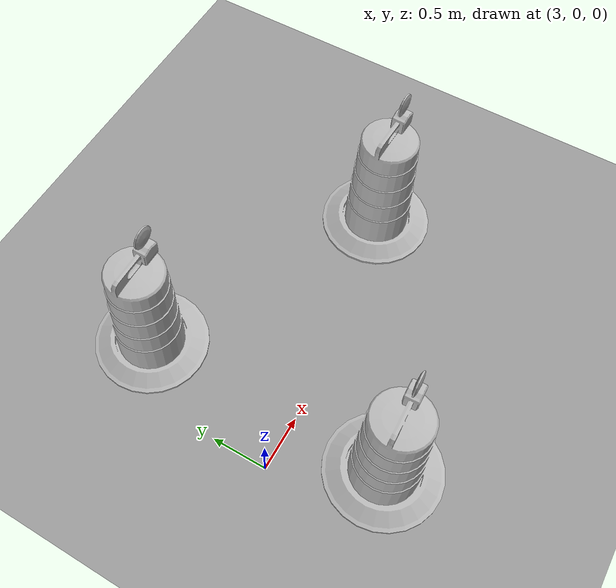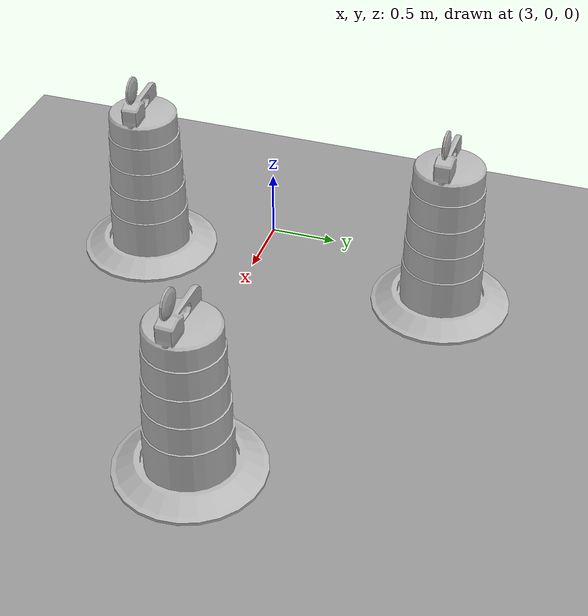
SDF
<sdf version="1.4">
 <world name="default">
  <light name="sun" type="directional">
   <pose>0 0 10 0 -0 0</pose>
   <diffuse>0.8 0.8 0.8 1</diffuse>
   <specular>0.2 0.2 0.2 1</specular>
   <attenuation>
    <range>1000</range>
    <constant>0.9</constant>
    <linear>0.01</linear>
    <quadratic>0.001</quadratic>
   </attenuation>
   <direction>0.5 0.1 -0.9</direction>
  </light>
  <scene><ambient>0.4 0.4 0.4 1</ambient><background>0.7 0.7 0.7 1</background><shadows>1</shadows></scene>
  <physics type="ode">
   <max_step_size>0.01</max_step_size>
   <real_time_factor>1</real_time_factor>
   <real_time_update_rate>100</real_time_update_rate>
   <gravity>0 0 -9.8</gravity>
  </physics>
  <model name="ground_plane_0">
   <static>1</static>
   <link name="link">
    <collision name="collision">
     <geometry><plane><normal>0 0 1</normal><size>100 100</size></plane></geometry>
     <surface><friction><ode><mu>100</mu><mu2>50</mu2></ode></friction></surface>
    </collision>
    <visual name="visual">
     <cast_shadows>0</cast_shadows>
     <geometry><plane><normal>0 0 1</normal><size>100 100</size></plane></geometry>
     <material>
      <script><uri>file://media/materials/scripts/gazebo.material</uri><name>Gazebo/Grey</name></script>
     </material>
    </visual>
    <velocity_decay><linear>0</linear><angular>0</angular></velocity_decay>
   </link>
   <pose>0.497681 0 0 0 -0 0</pose>
  </model>
  <spherical_coordinates>
   <surface_model>EARTH_WGS84</surface_model>
   <latitude_deg>0</latitude_deg>
   <longitude_deg>0</longitude_deg>
   <elevation>0</elevation>
   <heading_deg>0</heading_deg>
  </spherical_coordinates>
  <model name="Construction Barrel">
   <link name="link">
    <inertial>
     <pose>0 0 0.4 0 -0 0</pose>
     <mass>500</mass>
     <inertia><ixx>51.2096</ixx><iyy>51.2096</iyy><izz>25</izz><ixy>0</ixy><ixz>0</ixz><iyz>0</iyz></inertia>
    </inertial>
    <collision name="collision">
     <geometry><mesh><uri>model://construction_barrel/meshes/construction_barrel.dae</uri></mesh></geometry>
    </collision>
    <visual name="visual">
     <geometry><mesh><uri>model://construction_barrel/meshes/construction_barrel.dae</uri></mesh></geometry>
    </visual>
    <velocity_decay><linear>0</linear><angular>0</angular></velocity_decay>
   </link>
   <pose>3.47584 -0.844037 -0.00017 -6.8e-05 -0.000543 0.042982</pose>
   <static>0</static>
  </model>
  <model name="Construction Barrel_0">
   <link name="link">
    <inertial>
     <pose>0 0 0.4 0 -0 0</pose>
     <mass>500</mass>
     <inertia><ixx>51.2096</ixx><iyy>51.2096</iyy><izz>25</izz><ixy>0</ixy><ixz>0</ixz><iyz>0</iyz></inertia>
    </inertial>
    <collision name="collision">
     <geometry><mesh><uri>model://construction_barrel/meshes/construction_barrel.dae</uri></mesh></geometry>
    </collision>
    <visual name="visual">
     <geometry><mesh><uri>model://construction_barrel/meshes/construction_barrel.dae</uri></mesh></geometry>
    </visual>
    <velocity_decay><linear>0</linear><angular>0</angular></velocity_decay>
   </link>
   <pose>3.49103 1.46399 -0.000435 0.000251 -0.000735 -0.010054</pose>
   <static>0</static>
  </model>
  <model name="Construction Barrel_2">
   <link name="link">
    <inertial>
     <pose>0 0 0.4 0 -0 0</pose>
     <mass>500</mass>
     <inertia><ixx>51.2096</ixx><iyy>51.2096</iyy><izz>25</izz><ixy>0</ixy><ixz>0</ixz><iyz>0</iyz></inertia>
    </inertial>
    <collision name="collision">
     <geometry><mesh><uri>model://construction_barrel/meshes/construction_barrel.dae</uri></mesh></geometry>
    </collision>
    <visual name="visual">
     <geometry><mesh><uri>model://construction_barrel/meshes/construction_barrel.dae</uri></mesh></geometry>
    </visual>
    <velocity_decay><linear>0</linear><angular>0</angular></velocity_decay>
   </link>
   <pose>5.67506 0.355305 -0.00017 -6.9e-05 -0.000543 -0.039886</pose>
   <static>0</static>
  </model>
 </world>
</sdf>
